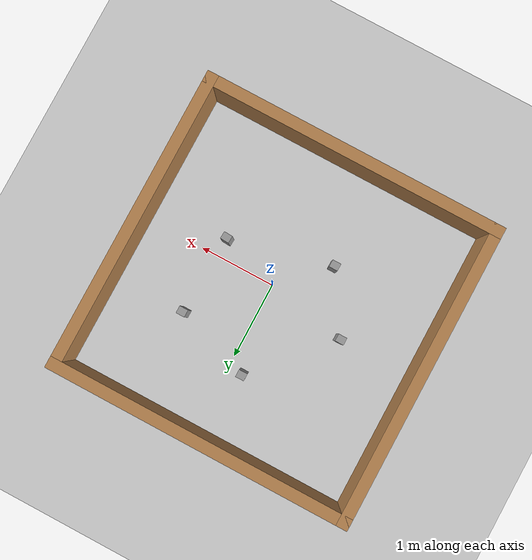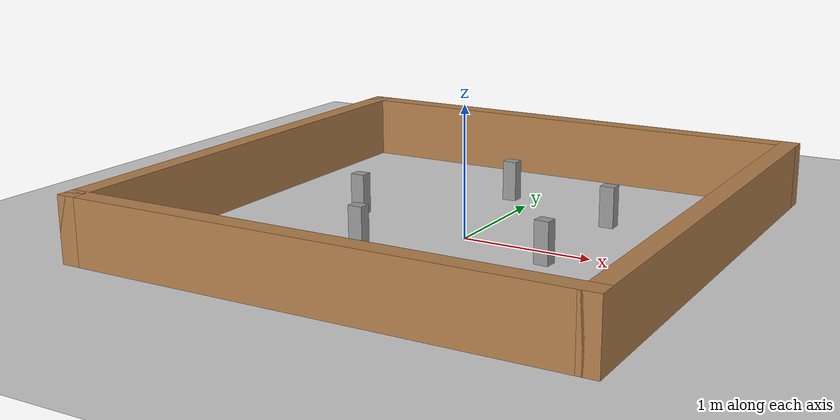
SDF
<sdf version="1.7">
 <world name="default">
  <light name="sun" type="directional">
   <pose>0 0 10 0 -0 0</pose>
   <diffuse>0.8 0.8 0.8 1</diffuse>
   <specular>0.2 0.2 0.2 1</specular>
   <attenuation>
    <range>1000</range>
    <constant>0.9</constant>
    <linear>0.01</linear>
    <quadratic>0.001</quadratic>
   </attenuation>
   <direction>-0.5 0.1 -0.9</direction>
   <spot><inner_angle>0</inner_angle><outer_angle>0</outer_angle><falloff>0</falloff></spot>
  </light>
  <model name="ground_plane">
   <static>1</static>
   <link name="link">
    <collision name="collision">
     <geometry><plane><normal>0 0 1</normal><size>100 100</size></plane></geometry>
     <surface>
      <contact><collide_bitmask>65535</collide_bitmask></contact>
      <friction><ode><mu>100</mu><mu2>50</mu2></ode></friction>
     </surface>
    </collision>
    <visual name="visual">
     <cast_shadows>0</cast_shadows>
     <geometry><plane><normal>0 0 1</normal><size>100 100</size></plane></geometry>
     <material>
      <script><uri>file://media/materials/scripts/gazebo.material</uri><name>Gazebo/Grey</name></script>
     </material>
    </visual>
   </link>
  </model>
  <physics type="ode">
   <real_time_update_rate>1000</real_time_update_rate>
   <max_step_size>0.001</max_step_size>
   <real_time_factor>1</real_time_factor>
   <ode>
    <solver>
     <type>quick</type>
     <iters>150</iters>
     <precon_iters>0</precon_iters>
     <sor>1.4</sor>
     <use_dynamic_moi_rescaling>1</use_dynamic_moi_rescaling>
    </solver>
    <constraints>
     <cfm>1e-05</cfm>
     <erp>0.2</erp>
     <contact_max_correcting_vel>2000</contact_max_correcting_vel>
     <contact_surface_layer>0.01</contact_surface_layer>
    </constraints>
   </ode>
  </physics>
  <model name="turtlebot3_square">
   <pose>-0.125363 0.12886 0 0 -0 0</pose>
   <link name="Wall_0">
    <collision name="Wall_0_Collision">
     <geometry><box><size>4 0.15 0.5</size></box></geometry>
     <pose>0 0 0.25 0 -0 0</pose>
    </collision>
    <visual name="Wall_0_Visual">
     <pose>0 0 0.25 0 -0 0</pose>
     <geometry><box><size>4 0.15 0.5</size></box></geometry>
     <material>
      <script><uri>file://media/materials/scripts/gazebo.material</uri><name>Gazebo/Wood</name></script>
      <ambient>1 1 1 1</ambient>
     </material>
    </visual>
    <pose>0 1.925 0 0 -0 0</pose>
   </link>
   <link name="Wall_2">
    <collision name="Wall_2_Collision">
     <geometry><box><size>4 0.15 0.5</size></box></geometry>
     <pose>0 0 0.25 0 -0 0</pose>
    </collision>
    <visual name="Wall_2_Visual">
     <pose>0 0 0.25 0 -0 0</pose>
     <geometry><box><size>4 0.15 0.5</size></box></geometry>
     <material>
      <script><uri>file://media/materials/scripts/gazebo.material</uri><name>Gazebo/Wood</name></script>
      <ambient>1 1 1 1</ambient>
     </material>
    </visual>
    <pose>-1.925 0 0 0 0 -1.5708</pose>
   </link>
   <link name="Wall_3">
    <collision name="Wall_3_Collision">
     <geometry><box><size>4 0.15 0.5</size></box></geometry>
     <pose>0 0 0.25 0 -0 0</pose>
    </collision>
    <visual name="Wall_3_Visual">
     <pose>0 0 0.25 0 -0 0</pose>
     <geometry><box><size>4 0.15 0.5</size></box></geometry>
     <material>
      <script><uri>file://media/materials/scripts/gazebo.material</uri><name>Gazebo/Wood</name></script>
      <ambient>1 1 1 1</ambient>
     </material>
    </visual>
    <pose>0 -1.925 0 0 -0 0</pose>
   </link>
   <link name="Wall_4">
    <collision name="Wall_4_Collision">
     <geometry><box><size>4 0.15 0.5</size></box></geometry>
     <pose>0 0 0.25 0 -0 0</pose>
    </collision>
    <visual name="Wall_4_Visual">
     <pose>0 0 0.25 0 -0 0</pose>
     <geometry><box><size>4 0.15 0.5</size></box></geometry>
     <material>
      <script><uri>file://media/materials/scripts/gazebo.material</uri><name>Gazebo/Wood</name></script>
      <ambient>1 1 1 1</ambient>
     </material>
    </visual>
    <pose>1.925 0 0 0 -0 1.5708</pose>
   </link>
   <static>1</static>
  </model>
  <scene><ambient>0.4 0.4 0.4 1</ambient><background>0.7 0.7 0.7 1</background><shadows>1</shadows></scene>
  <gravity>0 0 -9.8</gravity>
  <magnetic_field>6e-06 2.3e-05 -4.2e-05</magnetic_field>
  <atmosphere type="adiabatic"/>
  <spherical_coordinates>
   <surface_model>EARTH_WGS84</surface_model>
   <latitude_deg>0</latitude_deg>
   <longitude_deg>0</longitude_deg>
   <elevation>0</elevation>
   <heading_deg>0</heading_deg>
  </spherical_coordinates>
  <model name="unit_box_clone">
   <pose>0.754335 -0.231699 0.15991 -3e-06 -0 -0.059895</pose>
   <link name="link">
    <inertial>
     <mass>1</mass>
     <inertia>
      <ixx>0.166667</ixx>
      <ixy>0</ixy>
      <ixz>0</ixz>
      <iyy>0.166667</iyy>
      <iyz>0</iyz>
      <izz>0.166667</izz>
     </inertia>
    </inertial>
    <collision name="collision">
     <geometry><box><size>0.113807 0.0962739 0.319819</size></box></geometry>
    </collision>
    <visual name="visual">
     <geometry><box><size>0.113807 0.0962739 0.319819</size></box></geometry>
     <material>
      <script><name>Gazebo/Grey</name><uri>file://media/materials/scripts/gazebo.material</uri></script>
     </material>
    </visual>
   </link>
  </model>
  <model name="unit_box_clone_clone">
   <pose>0.79702 0.807007 0.159909 -1e-06 -0 -0.003469</pose>
   <link name="link">
    <inertial>
     <mass>1</mass>
     <inertia>
      <ixx>0.166667</ixx>
      <ixy>0</ixy>
      <ixz>0</ixz>
      <iyy>0.166667</iyy>
      <iyz>0</iyz>
      <izz>0.166667</izz>
     </inertia>
    </inertial>
    <collision name="collision">
     <geometry><box><size>0.113807 0.096274 0.319818</size></box></geometry>
    </collision>
    <visual name="visual">
     <geometry><box><size>0.113807 0.096274 0.319818</size></box></geometry>
     <material>
      <script><name>Gazebo/Grey</name><uri>file://media/materials/scripts/gazebo.material</uri></script>
     </material>
    </visual>
   </link>
  </model>
  <model name="unit_box_clone_clone_0">
   <pose>-0.193442 1.1402 0.159909 -3e-06 -0 -0.002342</pose>
   <link name="link">
    <inertial>
     <mass>1</mass>
     <inertia>
      <ixx>0.166667</ixx>
      <ixy>0</ixy>
      <ixz>0</ixz>
      <iyy>0.166667</iyy>
      <iyz>0</iyz>
      <izz>0.166667</izz>
     </inertia>
    </inertial>
    <collision name="collision">
     <geometry><box><size>0.113807 0.096274 0.319818</size></box></geometry>
    </collision>
    <visual name="visual">
     <geometry><box><size>0.113807 0.096274 0.319818</size></box></geometry>
     <material>
      <script><name>Gazebo/Grey</name><uri>file://media/materials/scripts/gazebo.material</uri></script>
     </material>
    </visual>
   </link>
  </model>
  <model name="unit_box_clone_clone_1">
   <pose>-1.04279 0.199909 0.159909 -1e-06 -0 0.01396</pose>
   <link name="link">
    <inertial>
     <mass>1</mass>
     <inertia>
      <ixx>0.166667</ixx>
      <ixy>0</ixy>
      <ixz>0</ixz>
      <iyy>0.166667</iyy>
      <iyz>0</iyz>
      <izz>0.166667</izz>
     </inertia>
    </inertial>
    <collision name="collision">
     <geometry><box><size>0.113807 0.096274 0.319818</size></box></geometry>
    </collision>
    <visual name="visual">
     <geometry><box><size>0.113807 0.096274 0.319818</size></box></geometry>
     <material>
      <script><name>Gazebo/Grey</name><uri>file://media/materials/scripts/gazebo.material</uri></script>
     </material>
    </visual>
   </link>
  </model>
  <model name="unit_box_clone_clone_4">
   <pose>-0.560412 -0.55259 0.159909 -1e-06 -0 -0.003941</pose>
   <link name="link">
    <inertial>
     <mass>1</mass>
     <inertia>
      <ixx>0.166667</ixx>
      <ixy>0</ixy>
      <ixz>0</ixz>
      <iyy>0.166667</iyy>
      <iyz>0</iyz>
      <izz>0.166667</izz>
     </inertia>
    </inertial>
    <collision name="collision">
     <geometry><box><size>0.113807 0.096274 0.319818</size></box></geometry>
    </collision>
    <visual name="visual">
     <geometry><box><size>0.113807 0.096274 0.319818</size></box></geometry>
     <material>
      <script><name>Gazebo/Grey</name><uri>file://media/materials/scripts/gazebo.material</uri></script>
     </material>
    </visual>
   </link>
  </model>
 </world>
</sdf>
